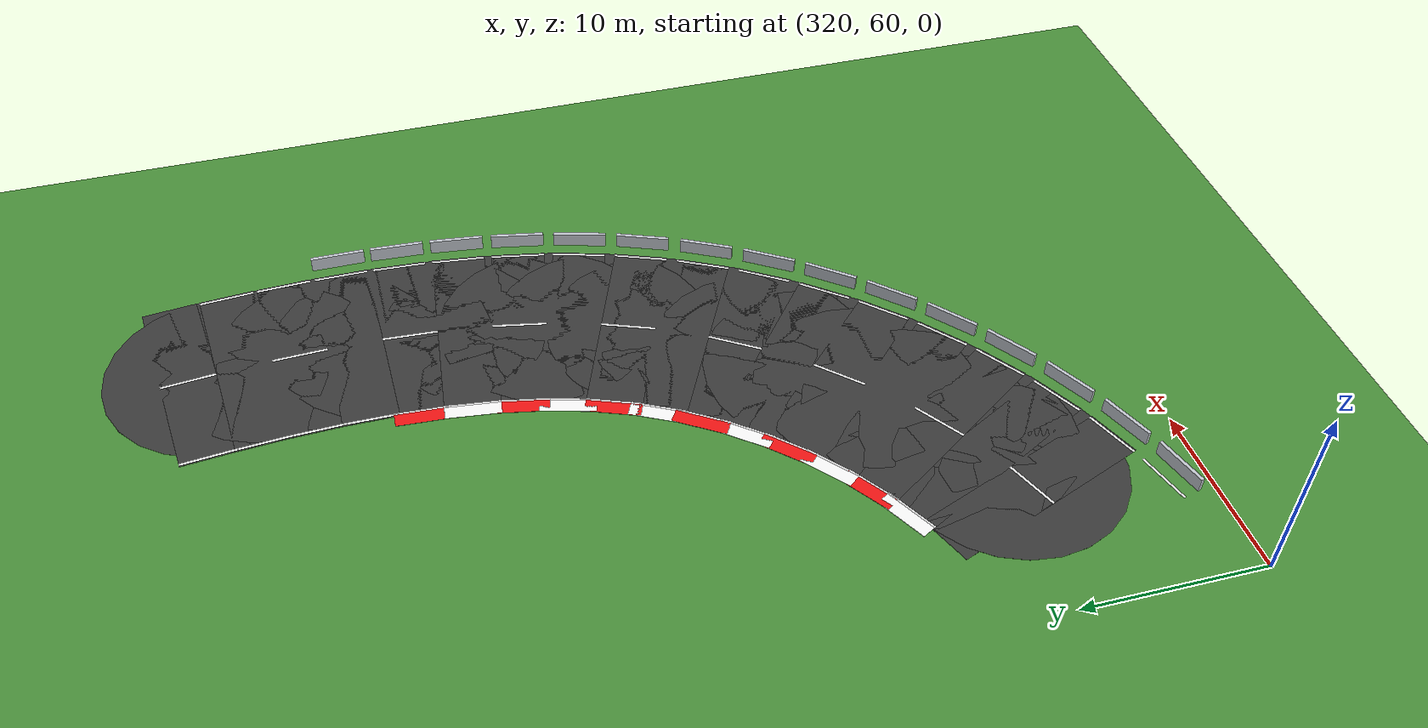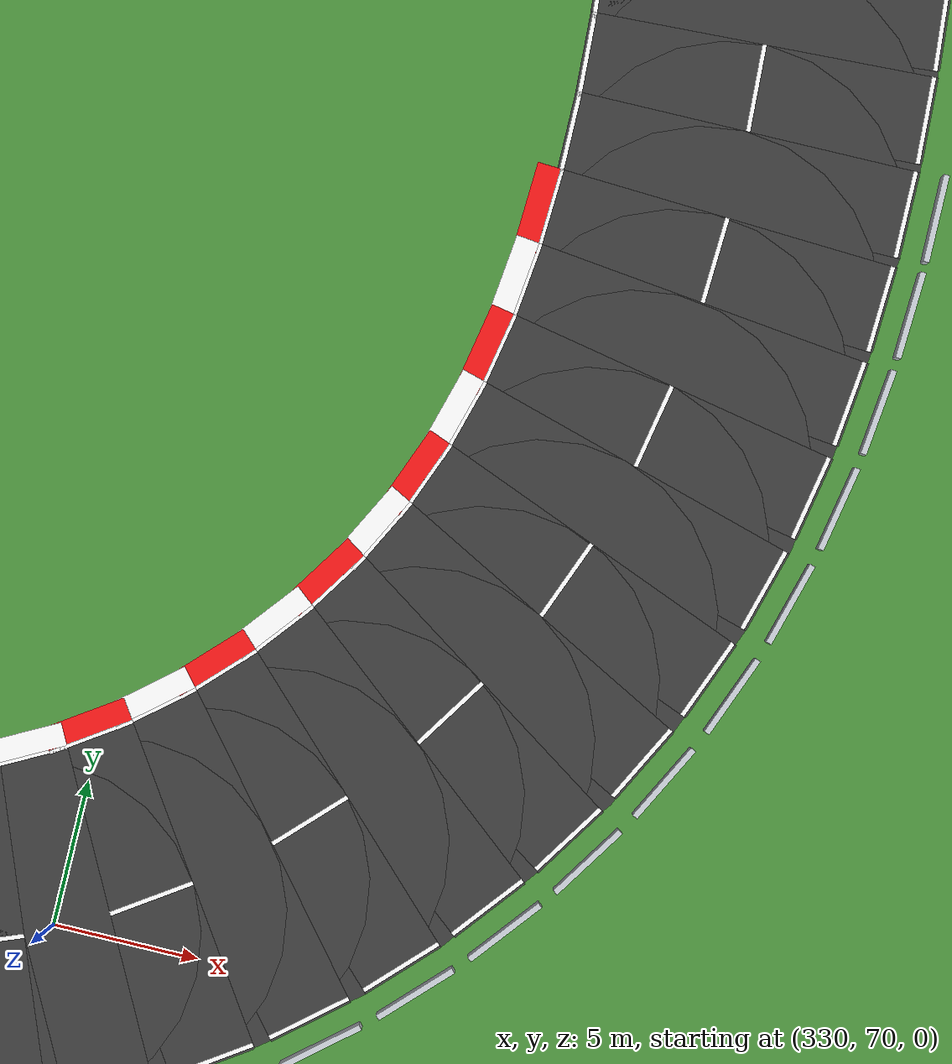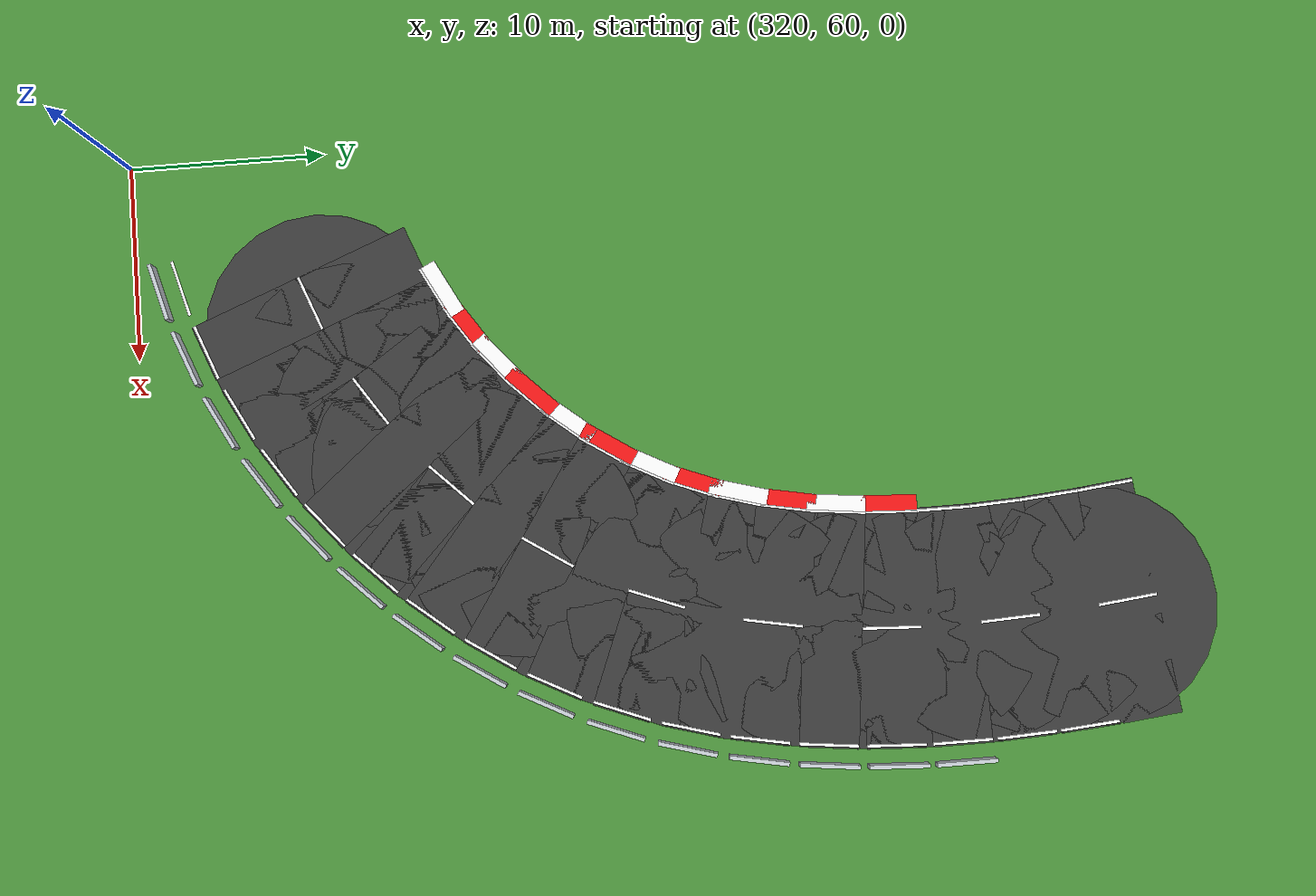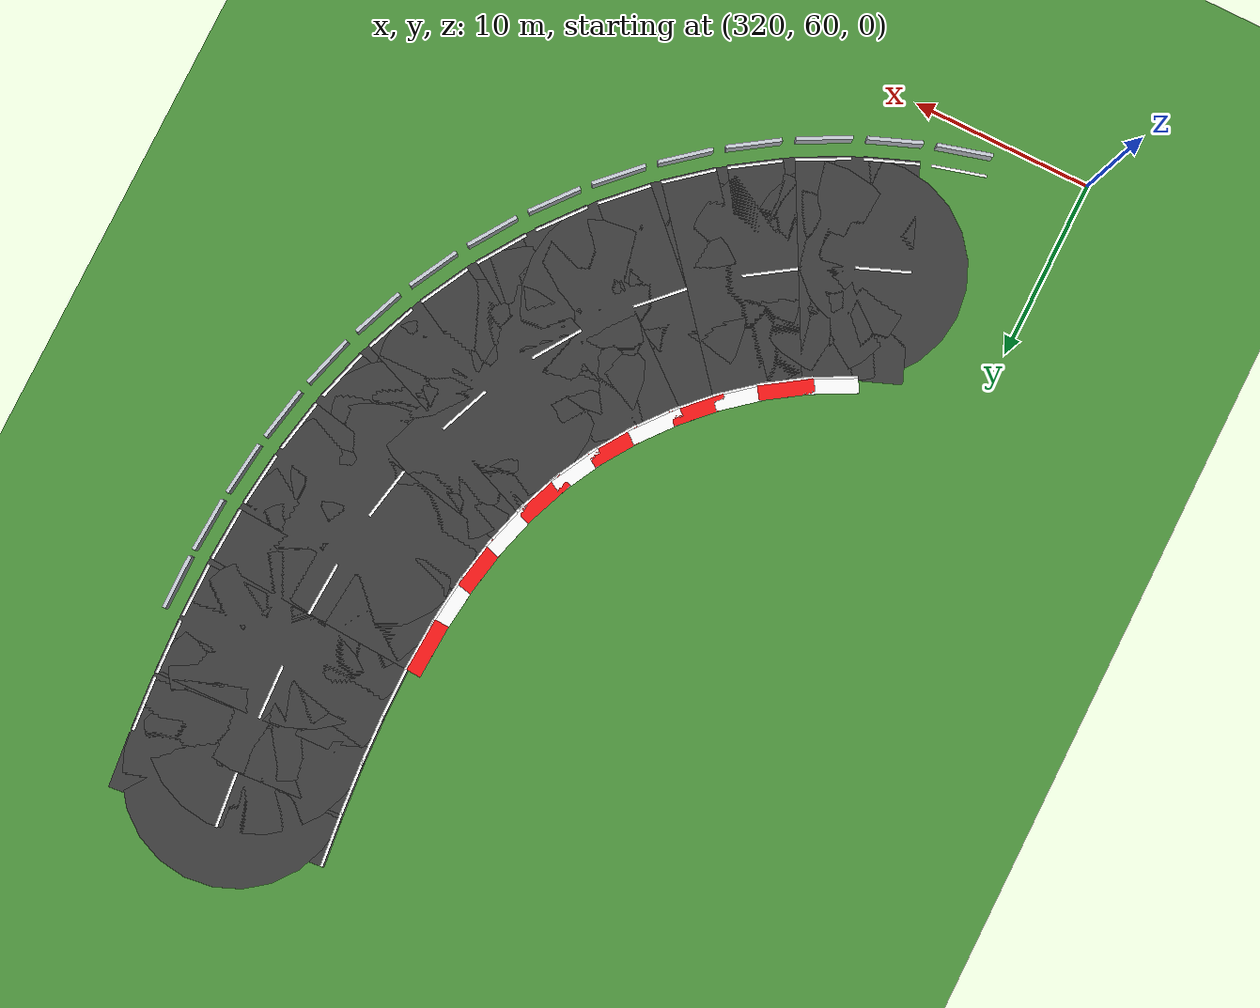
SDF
<sdf version="1.6">
 <world name="sem_silesia_ring_2026">
  <model name="ground_plane">
   <static>true</static>
   <link name="link">
    <collision name="collision">
     <geometry><plane><normal>0 0 1</normal><size>1200 1200</size></plane></geometry>
     <surface><friction><ode><mu>0.6</mu><mu2>0.6</mu2></ode></friction></surface>
    </collision>
    <visual name="visual">
     <geometry><plane><normal>0 0 1</normal><size>1200 1200</size></plane></geometry>
     <material><ambient>0.28 0.55 0.22 1</ambient><diffuse>0.28 0.55 0.22 1</diffuse></material>
    </visual>
   </link>
  </model>
  <model name="wl_R_s137">
   <static>true</static>
   <pose>326.4154 62.2663 0.0070 0 0 0.2693</pose>
   <link name="link">
    <visual name="v">
     <geometry><box><size>3.0013 0.1500 0.0080</size></box></geometry>
     <material><ambient>0.95 0.95 0.95 1</ambient><diffuse>0.95 0.95 0.95 1</diffuse></material>
    </visual>
   </link>
  </model>
  <model name="arm_outR_137">
   <static>true</static>
   <pose>326.6681 61.3506 0.4000 0 0 0.2693</pose>
   <link name="link">
    <visual name="v">
     <geometry><box><size>3.0013 0.2000 0.8000</size></box></geometry>
     <material><ambient>0.75 0.77 0.80 1</ambient><diffuse>0.75 0.77 0.80 1</diffuse></material>
    </visual>
    <collision name="c">
     <geometry><box><size>3.0013 0.2000 0.8000</size></box></geometry>
     <surface><friction><ode><mu>0.8</mu><mu2>0.8</mu2></ode></friction></surface>
    </collision>
   </link>
  </model>
  <model name="road_s138">
   <static>true</static>
   <pose>327.7028 68.8521 0.0030 0 0 0.3734</pose>
   <link name="link">
    <visual name="v">
     <geometry><box><size>3.0010 12.0000 0.0060</size></box></geometry>
     <material><ambient>0.22 0.22 0.22 1</ambient><diffuse>0.22 0.22 0.22 1</diffuse></material>
    </visual>
    <collision name="c">
     <geometry><box><size>3.0010 12.0000 0.0060</size></box></geometry>
     <surface><friction><ode><mu>0.9</mu><mu2>0.9</mu2></ode></friction></surface>
    </collision>
   </link>
  </model>
  <model name="wl_R_s138">
   <static>true</static>
   <pose>329.8367 63.4052 0.0070 0 0 0.3734</pose>
   <link name="link">
    <visual name="v">
     <geometry><box><size>3.0010 0.1500 0.0080</size></box></geometry>
     <material><ambient>0.95 0.95 0.95 1</ambient><diffuse>0.95 0.95 0.95 1</diffuse></material>
    </visual>
   </link>
  </model>
  <model name="cd_s138">
   <static>true</static>
   <pose>327.7028 68.8521 0.0070 0 0 0.3734</pose>
   <link name="link">
    <visual name="v">
     <geometry><box><size>3.0010 0.1500 0.0080</size></box></geometry>
     <material><ambient>0.95 0.95 0.95 1</ambient><diffuse>0.95 0.95 0.95 1</diffuse></material>
    </visual>
   </link>
  </model>
  <model name="arm_outR_138">
   <static>true</static>
   <pose>330.1833 62.5206 0.4000 0 0 0.3734</pose>
   <link name="link">
    <visual name="v">
     <geometry><box><size>3.0010 0.2000 0.8000</size></box></geometry>
     <material><ambient>0.75 0.77 0.80 1</ambient><diffuse>0.75 0.77 0.80 1</diffuse></material>
    </visual>
    <collision name="c">
     <geometry><box><size>3.0010 0.2000 0.8000</size></box></geometry>
     <surface><friction><ode><mu>0.8</mu><mu2>0.8</mu2></ode></friction></surface>
    </collision>
   </link>
  </model>
  <model name="road_s139">
   <static>true</static>
   <pose>330.4275 70.0987 0.0030 0 0 0.4848</pose>
   <link name="link">
    <visual name="v">
     <geometry><box><size>3.0010 12.0000 0.0060</size></box></geometry>
     <material><ambient>0.22 0.22 0.22 1</ambient><diffuse>0.22 0.22 0.22 1</diffuse></material>
    </visual>
    <collision name="c">
     <geometry><box><size>3.0010 12.0000 0.0060</size></box></geometry>
     <surface><friction><ode><mu>0.9</mu><mu2>0.9</mu2></ode></friction></surface>
    </collision>
   </link>
  </model>
  <model name="road_jnt139">
   <static>true</static>
   <pose>329.1000 69.3995 0.0030 0 0 0</pose>
   <link name="link">
    <visual name="v">
     <geometry><cylinder><radius>6.0000</radius><length>0.0060</length></cylinder></geometry>
     <material><ambient>0.22 0.22 0.22 1</ambient><diffuse>0.22 0.22 0.22 1</diffuse></material>
    </visual>
    <collision name="c">
     <geometry><cylinder><radius>6.0000</radius><length>0.0060</length></cylinder></geometry>
     <surface><friction><ode><mu>0.9</mu><mu2>0.9</mu2></ode></friction></surface>
    </collision>
   </link>
  </model>
  <model name="wl_L_s139">
   <static>true</static>
   <pose>327.7013 75.2746 0.0070 0 0 0.4848</pose>
   <link name="link">
    <visual name="v">
     <geometry><box><size>3.0010 0.1500 0.0080</size></box></geometry>
     <material><ambient>0.95 0.95 0.95 1</ambient><diffuse>0.95 0.95 0.95 1</diffuse></material>
    </visual>
   </link>
  </model>
  <model name="wl_R_s139">
   <static>true</static>
   <pose>333.1538 64.9228 0.0070 0 0 0.4848</pose>
   <link name="link">
    <visual name="v">
     <geometry><box><size>3.0010 0.1500 0.0080</size></box></geometry>
     <material><ambient>0.95 0.95 0.95 1</ambient><diffuse>0.95 0.95 0.95 1</diffuse></material>
    </visual>
   </link>
  </model>
  <model name="kerb_L_139">
   <static>true</static>
   <pose>327.4916 75.6728 0.0120 0 0 0.4848</pose>
   <link name="link">
    <visual name="v">
     <geometry><box><size>3.0010 0.8000 0.0160</size></box></geometry>
     <material><ambient>0.95 0.95 0.95 1</ambient><diffuse>0.95 0.95 0.95 1</diffuse></material>
    </visual>
   </link>
  </model>
  <model name="arm_outR_139">
   <static>true</static>
   <pose>333.5965 64.0823 0.4000 0 0 0.4848</pose>
   <link name="link">
    <visual name="v">
     <geometry><box><size>3.0010 0.2000 0.8000</size></box></geometry>
     <material><ambient>0.75 0.77 0.80 1</ambient><diffuse>0.75 0.77 0.80 1</diffuse></material>
    </visual>
    <collision name="c">
     <geometry><box><size>3.0010 0.2000 0.8000</size></box></geometry>
     <surface><friction><ode><mu>0.8</mu><mu2>0.8</mu2></ode></friction></surface>
    </collision>
   </link>
  </model>
  <model name="road_s140">
   <static>true</static>
   <pose>333.0004 71.6353 0.0030 0 0 0.5920</pose>
   <link name="link">
    <visual name="v">
     <geometry><box><size>3.0012 12.0000 0.0060</size></box></geometry>
     <material><ambient>0.22 0.22 0.22 1</ambient><diffuse>0.22 0.22 0.22 1</diffuse></material>
    </visual>
    <collision name="c">
     <geometry><box><size>3.0012 12.0000 0.0060</size></box></geometry>
     <surface><friction><ode><mu>0.9</mu><mu2>0.9</mu2></ode></friction></surface>
    </collision>
   </link>
  </model>
  <model name="road_jnt140">
   <static>true</static>
   <pose>331.7551 70.7980 0.0030 0 0 0</pose>
   <link name="link">
    <visual name="v">
     <geometry><cylinder><radius>6.0000</radius><length>0.0060</length></cylinder></geometry>
     <material><ambient>0.22 0.22 0.22 1</ambient><diffuse>0.22 0.22 0.22 1</diffuse></material>
    </visual>
    <collision name="c">
     <geometry><cylinder><radius>6.0000</radius><length>0.0060</length></cylinder></geometry>
     <surface><friction><ode><mu>0.9</mu><mu2>0.9</mu2></ode></friction></surface>
    </collision>
   </link>
  </model>
  <model name="wl_L_s140">
   <static>true</static>
   <pose>329.7361 76.4899 0.0070 0 0 0.5920</pose>
   <link name="link">
    <visual name="v">
     <geometry><box><size>3.0012 0.1500 0.0080</size></box></geometry>
     <material><ambient>0.95 0.95 0.95 1</ambient><diffuse>0.95 0.95 0.95 1</diffuse></material>
    </visual>
   </link>
  </model>
  <model name="wl_R_s140">
   <static>true</static>
   <pose>336.2647 66.7808 0.0070 0 0 0.5920</pose>
   <link name="link">
    <visual name="v">
     <geometry><box><size>3.0012 0.1500 0.0080</size></box></geometry>
     <material><ambient>0.95 0.95 0.95 1</ambient><diffuse>0.95 0.95 0.95 1</diffuse></material>
    </visual>
   </link>
  </model>
  <model name="cd_s140">
   <static>true</static>
   <pose>333.0004 71.6353 0.0070 0 0 0.5920</pose>
   <link name="link">
    <visual name="v">
     <geometry><box><size>3.0012 0.1500 0.0080</size></box></geometry>
     <material><ambient>0.95 0.95 0.95 1</ambient><diffuse>0.95 0.95 0.95 1</diffuse></material>
    </visual>
   </link>
  </model>
  <model name="kerb_L_140">
   <static>true</static>
   <pose>329.4849 76.8633 0.0120 0 0 0.5920</pose>
   <link name="link">
    <visual name="v">
     <geometry><box><size>3.0012 0.8000 0.0160</size></box></geometry>
     <material><ambient>0.92 0.08 0.08 1</ambient><diffuse>0.92 0.08 0.08 1</diffuse></material>
    </visual>
   </link>
  </model>
  <model name="arm_outR_140">
   <static>true</static>
   <pose>336.7948 65.9925 0.4000 0 0 0.5920</pose>
   <link name="link">
    <visual name="v">
     <geometry><box><size>3.0012 0.2000 0.8000</size></box></geometry>
     <material><ambient>0.75 0.77 0.80 1</ambient><diffuse>0.75 0.77 0.80 1</diffuse></material>
    </visual>
    <collision name="c">
     <geometry><box><size>3.0012 0.2000 0.8000</size></box></geometry>
     <surface><friction><ode><mu>0.8</mu><mu2>0.8</mu2></ode></friction></surface>
    </collision>
   </link>
  </model>
  <model name="road_s141">
   <static>true</static>
   <pose>335.4000 73.4316 0.0030 0 0 0.6932</pose>
   <link name="link">
    <visual name="v">
     <geometry><box><size>3.0013 12.0000 0.0060</size></box></geometry>
     <material><ambient>0.22 0.22 0.22 1</ambient><diffuse>0.22 0.22 0.22 1</diffuse></material>
    </visual>
    <collision name="c">
     <geometry><box><size>3.0013 12.0000 0.0060</size></box></geometry>
     <surface><friction><ode><mu>0.9</mu><mu2>0.9</mu2></ode></friction></surface>
    </collision>
   </link>
  </model>
  <model name="road_jnt141">
   <static>true</static>
   <pose>334.2456 72.4727 0.0030 0 0 0</pose>
   <link name="link">
    <visual name="v">
     <geometry><cylinder><radius>6.0000</radius><length>0.0060</length></cylinder></geometry>
     <material><ambient>0.22 0.22 0.22 1</ambient><diffuse>0.22 0.22 0.22 1</diffuse></material>
    </visual>
    <collision name="c">
     <geometry><cylinder><radius>6.0000</radius><length>0.0060</length></cylinder></geometry>
     <surface><friction><ode><mu>0.9</mu><mu2>0.9</mu2></ode></friction></surface>
    </collision>
   </link>
  </model>
  <model name="wl_L_s141">
   <static>true</static>
   <pose>331.6619 77.9315 0.0070 0 0 0.6932</pose>
   <link name="link">
    <visual name="v">
     <geometry><box><size>3.0013 0.1500 0.0080</size></box></geometry>
     <material><ambient>0.95 0.95 0.95 1</ambient><diffuse>0.95 0.95 0.95 1</diffuse></material>
    </visual>
   </link>
  </model>
  <model name="wl_R_s141">
   <static>true</static>
   <pose>339.1381 68.9317 0.0070 0 0 0.6932</pose>
   <link name="link">
    <visual name="v">
     <geometry><box><size>3.0013 0.1500 0.0080</size></box></geometry>
     <material><ambient>0.95 0.95 0.95 1</ambient><diffuse>0.95 0.95 0.95 1</diffuse></material>
    </visual>
   </link>
  </model>
  <model name="kerb_L_141">
   <static>true</static>
   <pose>331.3743 78.2776 0.0120 0 0 0.6932</pose>
   <link name="link">
    <visual name="v">
     <geometry><box><size>3.0013 0.8000 0.0160</size></box></geometry>
     <material><ambient>0.95 0.95 0.95 1</ambient><diffuse>0.95 0.95 0.95 1</diffuse></material>
    </visual>
   </link>
  </model>
  <model name="arm_outR_141">
   <static>true</static>
   <pose>339.7451 68.2010 0.4000 0 0 0.6932</pose>
   <link name="link">
    <visual name="v">
     <geometry><box><size>3.0013 0.2000 0.8000</size></box></geometry>
     <material><ambient>0.75 0.77 0.80 1</ambient><diffuse>0.75 0.77 0.80 1</diffuse></material>
    </visual>
    <collision name="c">
     <geometry><box><size>3.0013 0.2000 0.8000</size></box></geometry>
     <surface><friction><ode><mu>0.8</mu><mu2>0.8</mu2></ode></friction></surface>
    </collision>
   </link>
  </model>
  <model name="road_s142">
   <static>true</static>
   <pose>337.6096 75.4574 0.0030 0 0 0.7908</pose>
   <link name="link">
    <visual name="v">
     <geometry><box><size>3.0014 12.0000 0.0060</size></box></geometry>
     <material><ambient>0.22 0.22 0.22 1</ambient><diffuse>0.22 0.22 0.22 1</diffuse></material>
    </visual>
    <collision name="c">
     <geometry><box><size>3.0014 12.0000 0.0060</size></box></geometry>
     <surface><friction><ode><mu>0.9</mu><mu2>0.9</mu2></ode></friction></surface>
    </collision>
   </link>
  </model>
  <model name="road_jnt142">
   <static>true</static>
   <pose>336.5543 74.3905 0.0030 0 0 0</pose>
   <link name="link">
    <visual name="v">
     <geometry><cylinder><radius>6.0000</radius><length>0.0060</length></cylinder></geometry>
     <material><ambient>0.22 0.22 0.22 1</ambient><diffuse>0.22 0.22 0.22 1</diffuse></material>
    </visual>
    <collision name="c">
     <geometry><cylinder><radius>6.0000</radius><length>0.0060</length></cylinder></geometry>
     <surface><friction><ode><mu>0.9</mu><mu2>0.9</mu2></ode></friction></surface>
    </collision>
   </link>
  </model>
  <model name="wl_L_s142">
   <static>true</static>
   <pose>333.4506 79.5714 0.0070 0 0 0.7908</pose>
   <link name="link">
    <visual name="v">
     <geometry><box><size>3.0014 0.1500 0.0080</size></box></geometry>
     <material><ambient>0.95 0.95 0.95 1</ambient><diffuse>0.95 0.95 0.95 1</diffuse></material>
    </visual>
   </link>
  </model>
  <model name="wl_R_s142">
   <static>true</static>
   <pose>341.7687 71.3434 0.0070 0 0 0.7908</pose>
   <link name="link">
    <visual name="v">
     <geometry><box><size>3.0014 0.1500 0.0080</size></box></geometry>
     <material><ambient>0.95 0.95 0.95 1</ambient><diffuse>0.95 0.95 0.95 1</diffuse></material>
    </visual>
   </link>
  </model>
  <model name="cd_s142">
   <static>true</static>
   <pose>337.6096 75.4574 0.0070 0 0 0.7908</pose>
   <link name="link">
    <visual name="v">
     <geometry><box><size>3.0014 0.1500 0.0080</size></box></geometry>
     <material><ambient>0.95 0.95 0.95 1</ambient><diffuse>0.95 0.95 0.95 1</diffuse></material>
    </visual>
   </link>
  </model>
  <model name="kerb_L_142">
   <static>true</static>
   <pose>333.1307 79.8879 0.0120 0 0 0.7908</pose>
   <link name="link">
    <visual name="v">
     <geometry><box><size>3.0014 0.8000 0.0160</size></box></geometry>
     <material><ambient>0.92 0.08 0.08 1</ambient><diffuse>0.92 0.08 0.08 1</diffuse></material>
    </visual>
   </link>
  </model>
  <model name="arm_outR_142">
   <static>true</static>
   <pose>342.4441 70.6753 0.4000 0 0 0.7908</pose>
   <link name="link">
    <visual name="v">
     <geometry><box><size>3.0014 0.2000 0.8000</size></box></geometry>
     <material><ambient>0.75 0.77 0.80 1</ambient><diffuse>0.75 0.77 0.80 1</diffuse></material>
    </visual>
    <collision name="c">
     <geometry><box><size>3.0014 0.2000 0.8000</size></box></geometry>
     <surface><friction><ode><mu>0.8</mu><mu2>0.8</mu2></ode></friction></surface>
    </collision>
   </link>
  </model>
  <model name="road_s143">
   <static>true</static>
   <pose>339.6126 77.6880 0.0030 0 0 0.8874</pose>
   <link name="link">
    <visual name="v">
     <geometry><box><size>3.0014 12.0000 0.0060</size></box></geometry>
     <material><ambient>0.22 0.22 0.22 1</ambient><diffuse>0.22 0.22 0.22 1</diffuse></material>
    </visual>
    <collision name="c">
     <geometry><box><size>3.0014 12.0000 0.0060</size></box></geometry>
     <surface><friction><ode><mu>0.9</mu><mu2>0.9</mu2></ode></friction></surface>
    </collision>
   </link>
  </model>
  <model name="road_jnt143">
   <static>true</static>
   <pose>338.6650 76.5243 0.0030 0 0 0</pose>
   <link name="link">
    <visual name="v">
     <geometry><cylinder><radius>6.0000</radius><length>0.0060</length></cylinder></geometry>
     <material><ambient>0.22 0.22 0.22 1</ambient><diffuse>0.22 0.22 0.22 1</diffuse></material>
    </visual>
    <collision name="c">
     <geometry><cylinder><radius>6.0000</radius><length>0.0060</length></cylinder></geometry>
     <surface><friction><ode><mu>0.9</mu><mu2>0.9</mu2></ode></friction></surface>
    </collision>
   </link>
  </model>
  <model name="wl_L_s143">
   <static>true</static>
   <pose>335.0763 81.3819 0.0070 0 0 0.8874</pose>
   <link name="link">
    <visual name="v">
     <geometry><box><size>3.0014 0.1500 0.0080</size></box></geometry>
     <material><ambient>0.95 0.95 0.95 1</ambient><diffuse>0.95 0.95 0.95 1</diffuse></material>
    </visual>
   </link>
  </model>
  <model name="wl_R_s143">
   <static>true</static>
   <pose>344.1489 73.9941 0.0070 0 0 0.8874</pose>
   <link name="link">
    <visual name="v">
     <geometry><box><size>3.0014 0.1500 0.0080</size></box></geometry>
     <material><ambient>0.95 0.95 0.95 1</ambient><diffuse>0.95 0.95 0.95 1</diffuse></material>
    </visual>
   </link>
  </model>
  <model name="kerb_L_143">
   <static>true</static>
   <pose>334.7273 81.6660 0.0120 0 0 0.8874</pose>
   <link name="link">
    <visual name="v">
     <geometry><box><size>3.0014 0.8000 0.0160</size></box></geometry>
     <material><ambient>0.95 0.95 0.95 1</ambient><diffuse>0.95 0.95 0.95 1</diffuse></material>
    </visual>
   </link>
  </model>
  <model name="arm_outR_143">
   <static>true</static>
   <pose>344.8855 73.3943 0.4000 0 0 0.8874</pose>
   <link name="link">
    <visual name="v">
     <geometry><box><size>3.0014 0.2000 0.8000</size></box></geometry>
     <material><ambient>0.75 0.77 0.80 1</ambient><diffuse>0.75 0.77 0.80 1</diffuse></material>
    </visual>
    <collision name="c">
     <geometry><box><size>3.0014 0.2000 0.8000</size></box></geometry>
     <surface><friction><ode><mu>0.8</mu><mu2>0.8</mu2></ode></friction></surface>
    </collision>
   </link>
  </model>
  <model name="road_s144">
   <static>true</static>
   <pose>341.3894 80.1024 0.0030 0 0 0.9853</pose>
   <link name="link">
    <visual name="v">
     <geometry><box><size>3.0013 12.0000 0.0060</size></box></geometry>
     <material><ambient>0.22 0.22 0.22 1</ambient><diffuse>0.22 0.22 0.22 1</diffuse></material>
    </visual>
    <collision name="c">
     <geometry><box><size>3.0013 12.0000 0.0060</size></box></geometry>
     <surface><friction><ode><mu>0.9</mu><mu2>0.9</mu2></ode></friction></surface>
    </collision>
   </link>
  </model>
  <model name="road_jnt144">
   <static>true</static>
   <pose>340.5602 78.8517 0.0030 0 0 0</pose>
   <link name="link">
    <visual name="v">
     <geometry><cylinder><radius>6.0000</radius><length>0.0060</length></cylinder></geometry>
     <material><ambient>0.22 0.22 0.22 1</ambient><diffuse>0.22 0.22 0.22 1</diffuse></material>
    </visual>
    <collision name="c">
     <geometry><cylinder><radius>6.0000</radius><length>0.0060</length></cylinder></geometry>
     <surface><friction><ode><mu>0.9</mu><mu2>0.9</mu2></ode></friction></surface>
    </collision>
   </link>
  </model>
  <model name="wl_L_s144">
   <static>true</static>
   <pose>336.5136 83.3350 0.0070 0 0 0.9853</pose>
   <link name="link">
    <visual name="v">
     <geometry><box><size>3.0013 0.1500 0.0080</size></box></geometry>
     <material><ambient>0.95 0.95 0.95 1</ambient><diffuse>0.95 0.95 0.95 1</diffuse></material>
    </visual>
   </link>
  </model>
  <model name="wl_R_s144">
   <static>true</static>
   <pose>346.2651 76.8698 0.0070 0 0 0.9853</pose>
   <link name="link">
    <visual name="v">
     <geometry><box><size>3.0013 0.1500 0.0080</size></box></geometry>
     <material><ambient>0.95 0.95 0.95 1</ambient><diffuse>0.95 0.95 0.95 1</diffuse></material>
    </visual>
   </link>
  </model>
  <model name="cd_s144">
   <static>true</static>
   <pose>341.3894 80.1024 0.0070 0 0 0.9853</pose>
   <link name="link">
    <visual name="v">
     <geometry><box><size>3.0013 0.1500 0.0080</size></box></geometry>
     <material><ambient>0.95 0.95 0.95 1</ambient><diffuse>0.95 0.95 0.95 1</diffuse></material>
    </visual>
   </link>
  </model>
  <model name="kerb_L_144">
   <static>true</static>
   <pose>336.1386 83.5837 0.0120 0 0 0.9853</pose>
   <link name="link">
    <visual name="v">
     <geometry><box><size>3.0013 0.8000 0.0160</size></box></geometry>
     <material><ambient>0.92 0.08 0.08 1</ambient><diffuse>0.92 0.08 0.08 1</diffuse></material>
    </visual>
   </link>
  </model>
  <model name="arm_outR_144">
   <static>true</static>
   <pose>347.0569 76.3449 0.4000 0 0 0.9853</pose>
   <link name="link">
    <visual name="v">
     <geometry><box><size>3.0013 0.2000 0.8000</size></box></geometry>
     <material><ambient>0.75 0.77 0.80 1</ambient><diffuse>0.75 0.77 0.80 1</diffuse></material>
    </visual>
    <collision name="c">
     <geometry><box><size>3.0013 0.2000 0.8000</size></box></geometry>
     <surface><friction><ode><mu>0.8</mu><mu2>0.8</mu2></ode></friction></surface>
    </collision>
   </link>
  </model>
  <model name="road_s145">
   <static>true</static>
   <pose>342.9163 82.6817 0.0030 0 0 1.0872</pose>
   <link name="link">
    <visual name="v">
     <geometry><box><size>3.0012 12.0000 0.0060</size></box></geometry>
     <material><ambient>0.22 0.22 0.22 1</ambient><diffuse>0.22 0.22 0.22 1</diffuse></material>
    </visual>
    <collision name="c">
     <geometry><box><size>3.0012 12.0000 0.0060</size></box></geometry>
     <surface><friction><ode><mu>0.9</mu><mu2>0.9</mu2></ode></friction></surface>
    </collision>
   </link>
  </model>
  <model name="road_jnt145">
   <static>true</static>
   <pose>342.2186 81.3532 0.0030 0 0 0</pose>
   <link name="link">
    <visual name="v">
     <geometry><cylinder><radius>6.0000</radius><length>0.0060</length></cylinder></geometry>
     <material><ambient>0.22 0.22 0.22 1</ambient><diffuse>0.22 0.22 0.22 1</diffuse></material>
    </visual>
    <collision name="c">
     <geometry><cylinder><radius>6.0000</radius><length>0.0060</length></cylinder></geometry>
     <surface><friction><ode><mu>0.9</mu><mu2>0.9</mu2></ode></friction></surface>
    </collision>
   </link>
  </model>
  <model name="wl_L_s145">
   <static>true</static>
   <pose>337.7371 85.4016 0.0070 0 0 1.0872</pose>
   <link name="link">
    <visual name="v">
     <geometry><box><size>3.0012 0.1500 0.0080</size></box></geometry>
     <material><ambient>0.95 0.95 0.95 1</ambient><diffuse>0.95 0.95 0.95 1</diffuse></material>
    </visual>
   </link>
  </model>
  <model name="wl_R_s145">
   <static>true</static>
   <pose>348.0955 79.9617 0.0070 0 0 1.0872</pose>
   <link name="link">
    <visual name="v">
     <geometry><box><size>3.0012 0.1500 0.0080</size></box></geometry>
     <material><ambient>0.95 0.95 0.95 1</ambient><diffuse>0.95 0.95 0.95 1</diffuse></material>
    </visual>
   </link>
  </model>
  <model name="kerb_L_145">
   <static>true</static>
   <pose>337.3387 85.6109 0.0120 0 0 1.0872</pose>
   <link name="link">
    <visual name="v">
     <geometry><box><size>3.0012 0.8000 0.0160</size></box></geometry>
     <material><ambient>0.95 0.95 0.95 1</ambient><diffuse>0.95 0.95 0.95 1</diffuse></material>
    </visual>
   </link>
  </model>
  <model name="arm_outR_145">
   <static>true</static>
   <pose>348.9366 79.5200 0.4000 0 0 1.0872</pose>
   <link name="link">
    <visual name="v">
     <geometry><box><size>3.0012 0.2000 0.8000</size></box></geometry>
     <material><ambient>0.75 0.77 0.80 1</ambient><diffuse>0.75 0.77 0.80 1</diffuse></material>
    </visual>
    <collision name="c">
     <geometry><box><size>3.0012 0.2000 0.8000</size></box></geometry>
     <surface><friction><ode><mu>0.8</mu><mu2>0.8</mu2></ode></friction></surface>
    </collision>
   </link>
  </model>
  <model name="road_s146">
   <static>true</static>
   <pose>344.1680 85.4048 0.0030 0 0 1.1927</pose>
   <link name="link">
    <visual name="v">
     <geometry><box><size>3.0012 12.0000 0.0060</size></box></geometry>
     <material><ambient>0.22 0.22 0.22 1</ambient><diffuse>0.22 0.22 0.22 1</diffuse></material>
    </visual>
    <collision name="c">
     <geometry><box><size>3.0012 12.0000 0.0060</size></box></geometry>
     <surface><friction><ode><mu>0.9</mu><mu2>0.9</mu2></ode></friction></surface>
    </collision>
   </link>
  </model>
  <model name="road_jnt146">
   <static>true</static>
   <pose>343.6140 84.0102 0.0030 0 0 0</pose>
   <link name="link">
    <visual name="v">
     <geometry><cylinder><radius>6.0000</radius><length>0.0060</length></cylinder></geometry>
     <material><ambient>0.22 0.22 0.22 1</ambient><diffuse>0.22 0.22 0.22 1</diffuse></material>
    </visual>
    <collision name="c">
     <geometry><cylinder><radius>6.0000</radius><length>0.0060</length></cylinder></geometry>
     <surface><friction><ode><mu>0.9</mu><mu2>0.9</mu2></ode></friction></surface>
    </collision>
   </link>
  </model>
  <model name="wl_L_s146">
   <static>true</static>
   <pose>338.7313 87.5646 0.0070 0 0 1.1927</pose>
   <link name="link">
    <visual name="v">
     <geometry><box><size>3.0012 0.1500 0.0080</size></box></geometry>
     <material><ambient>0.95 0.95 0.95 1</ambient><diffuse>0.95 0.95 0.95 1</diffuse></material>
    </visual>
   </link>
  </model>
  <model name="wl_R_s146">
   <static>true</static>
   <pose>349.6047 83.2450 0.0070 0 0 1.1927</pose>
   <link name="link">
    <visual name="v">
     <geometry><box><size>3.0012 0.1500 0.0080</size></box></geometry>
     <material><ambient>0.95 0.95 0.95 1</ambient><diffuse>0.95 0.95 0.95 1</diffuse></material>
    </visual>
   </link>
  </model>
  <model name="cd_s146">
   <static>true</static>
   <pose>344.1680 85.4048 0.0070 0 0 1.1927</pose>
   <link name="link">
    <visual name="v">
     <geometry><box><size>3.0012 0.1500 0.0080</size></box></geometry>
     <material><ambient>0.95 0.95 0.95 1</ambient><diffuse>0.95 0.95 0.95 1</diffuse></material>
    </visual>
   </link>
  </model>
  <model name="kerb_L_146">
   <static>true</static>
   <pose>338.3131 87.7307 0.0120 0 0 1.1927</pose>
   <link name="link">
    <visual name="v">
     <geometry><box><size>3.0012 0.8000 0.0160</size></box></geometry>
     <material><ambient>0.92 0.08 0.08 1</ambient><diffuse>0.92 0.08 0.08 1</diffuse></material>
    </visual>
   </link>
  </model>
  <model name="arm_outR_146">
   <static>true</static>
   <pose>350.4876 82.8942 0.4000 0 0 1.1927</pose>
   <link name="link">
    <visual name="v">
     <geometry><box><size>3.0012 0.2000 0.8000</size></box></geometry>
     <material><ambient>0.75 0.77 0.80 1</ambient><diffuse>0.75 0.77 0.80 1</diffuse></material>
    </visual>
    <collision name="c">
     <geometry><box><size>3.0012 0.2000 0.8000</size></box></geometry>
     <surface><friction><ode><mu>0.8</mu><mu2>0.8</mu2></ode></friction></surface>
    </collision>
   </link>
  </model>
  <model name="road_s147">
   <static>true</static>
   <pose>345.1360 88.2419 0.0030 0 0 1.2913</pose>
   <link name="link">
    <visual name="v">
     <geometry><box><size>3.0014 12.0000 0.0060</size></box></geometry>
     <material><ambient>0.22 0.22 0.22 1</ambient><diffuse>0.22 0.22 0.22 1</diffuse></material>
    </visual>
    <collision name="c">
     <geometry><box><size>3.0014 12.0000 0.0060</size></box></geometry>
     <surface><friction><ode><mu>0.9</mu><mu2>0.9</mu2></ode></friction></surface>
    </collision>
   </link>
  </model>
  <model name="road_jnt147">
   <static>true</static>
   <pose>344.7220 86.7994 0.0030 0 0 0</pose>
   <link name="link">
    <visual name="v">
     <geometry><cylinder><radius>6.0000</radius><length>0.0060</length></cylinder></geometry>
     <material><ambient>0.22 0.22 0.22 1</ambient><diffuse>0.22 0.22 0.22 1</diffuse></material>
    </visual>
    <collision name="c">
     <geometry><cylinder><radius>6.0000</radius><length>0.0060</length></cylinder></geometry>
     <surface><friction><ode><mu>0.9</mu><mu2>0.9</mu2></ode></friction></surface>
    </collision>
   </link>
  </model>
  <model name="wl_L_s147">
   <static>true</static>
   <pose>339.5129 89.8555 0.0070 0 0 1.2913</pose>
   <link name="link">
    <visual name="v">
     <geometry><box><size>3.0014 0.1500 0.0080</size></box></geometry>
     <material><ambient>0.95 0.95 0.95 1</ambient><diffuse>0.95 0.95 0.95 1</diffuse></material>
    </visual>
   </link>
  </model>
  <model name="wl_R_s147">
   <static>true</static>
   <pose>350.7590 86.6283 0.0070 0 0 1.2913</pose>
   <link name="link">
    <visual name="v">
     <geometry><box><size>3.0014 0.1500 0.0080</size></box></geometry>
     <material><ambient>0.95 0.95 0.95 1</ambient><diffuse>0.95 0.95 0.95 1</diffuse></material>
    </visual>
   </link>
  </model>
  <model name="kerb_L_147">
   <static>true</static>
   <pose>339.0804 89.9796 0.0120 0 0 1.2913</pose>
   <link name="link">
    <visual name="v">
     <geometry><box><size>3.0014 0.8000 0.0160</size></box></geometry>
     <material><ambient>0.95 0.95 0.95 1</ambient><diffuse>0.95 0.95 0.95 1</diffuse></material>
    </visual>
   </link>
  </model>
  <model name="arm_outR_147">
   <static>true</static>
   <pose>351.6722 86.3662 0.4000 0 0 1.2913</pose>
   <link name="link">
    <visual name="v">
     <geometry><box><size>3.0014 0.2000 0.8000</size></box></geometry>
     <material><ambient>0.75 0.77 0.80 1</ambient><diffuse>0.75 0.77 0.80 1</diffuse></material>
    </visual>
    <collision name="c">
     <geometry><box><size>3.0014 0.2000 0.8000</size></box></geometry>
     <surface><friction><ode><mu>0.8</mu><mu2>0.8</mu2></ode></friction></surface>
    </collision>
   </link>
  </model>
  <model name="road_s148">
   <static>true</static>
   <pose>345.8360 91.1577 0.0030 0 0 1.3790</pose>
   <link name="link">
    <visual name="v">
     <geometry><box><size>3.0017 12.0000 0.0060</size></box></geometry>
     <material><ambient>0.22 0.22 0.22 1</ambient><diffuse>0.22 0.22 0.22 1</diffuse></material>
    </visual>
    <collision name="c">
     <geometry><box><size>3.0017 12.0000 0.0060</size></box></geometry>
     <surface><friction><ode><mu>0.9</mu><mu2>0.9</mu2></ode></friction></surface>
    </collision>
   </link>
  </model>
  <model name="road_jnt148">
   <static>true</static>
   <pose>345.5499 89.6844 0.0030 0 0 0</pose>
   <link name="link">
    <visual name="v">
     <geometry><cylinder><radius>6.0000</radius><length>0.0060</length></cylinder></geometry>
     <material><ambient>0.22 0.22 0.22 1</ambient><diffuse>0.22 0.22 0.22 1</diffuse></material>
    </visual>
    <collision name="c">
     <geometry><cylinder><radius>6.0000</radius><length>0.0060</length></cylinder></geometry>
     <surface><friction><ode><mu>0.9</mu><mu2>0.9</mu2></ode></friction></surface>
    </collision>
   </link>
  </model>
  <model name="wl_L_s148">
   <static>true</static>
   <pose>340.0932 92.2727 0.0070 0 0 1.3790</pose>
   <link name="link">
    <visual name="v">
     <geometry><box><size>3.0017 0.1500 0.0080</size></box></geometry>
     <material><ambient>0.95 0.95 0.95 1</ambient><diffuse>0.95 0.95 0.95 1</diffuse></material>
    </visual>
   </link>
  </model>
  <model name="wl_R_s148">
   <static>true</static>
   <pose>351.5787 90.0428 0.0070 0 0 1.3790</pose>
   <link name="link">
    <visual name="v">
     <geometry><box><size>3.0017 0.1500 0.0080</size></box></geometry>
     <material><ambient>0.95 0.95 0.95 1</ambient><diffuse>0.95 0.95 0.95 1</diffuse></material>
    </visual>
   </link>
  </model>
  <model name="cd_s148">
   <static>true</static>
   <pose>345.8360 91.1577 0.0070 0 0 1.3790</pose>
   <link name="link">
    <visual name="v">
     <geometry><box><size>3.0017 0.1500 0.0080</size></box></geometry>
     <material><ambient>0.95 0.95 0.95 1</ambient><diffuse>0.95 0.95 0.95 1</diffuse></material>
    </visual>
   </link>
  </model>
  <model name="kerb_L_148">
   <static>true</static>
   <pose>339.6514 92.3584 0.0120 0 0 1.3790</pose>
   <link name="link">
    <visual name="v">
     <geometry><box><size>3.0017 0.8000 0.0160</size></box></geometry>
     <material><ambient>0.92 0.08 0.08 1</ambient><diffuse>0.92 0.08 0.08 1</diffuse></material>
    </visual>
   </link>
  </model>
  <model name="arm_outR_148">
   <static>true</static>
   <pose>352.5113 89.8617 0.4000 0 0 1.3790</pose>
   <link name="link">
    <visual name="v">
     <geometry><box><size>3.0017 0.2000 0.8000</size></box></geometry>
     <material><ambient>0.75 0.77 0.80 1</ambient><diffuse>0.75 0.77 0.80 1</diffuse></material>
    </visual>
    <collision name="c">
     <geometry><box><size>3.0017 0.2000 0.8000</size></box></geometry>
     <surface><friction><ode><mu>0.8</mu><mu2>0.8</mu2></ode></friction></surface>
    </collision>
   </link>
  </model>
  <model name="road_s149">
   <static>true</static>
   <pose>346.2955 94.1220 0.0030 0 0 1.4549</pose>
   <link name="link">
    <visual name="v">
     <geometry><box><size>3.0019 12.0000 0.0060</size></box></geometry>
     <material><ambient>0.22 0.22 0.22 1</ambient><diffuse>0.22 0.22 0.22 1</diffuse></material>
    </visual>
    <collision name="c">
     <geometry><box><size>3.0019 12.0000 0.0060</size></box></geometry>
     <surface><friction><ode><mu>0.9</mu><mu2>0.9</mu2></ode></friction></surface>
    </collision>
   </link>
  </model>
  <model name="road_jnt149">
   <static>true</static>
   <pose>346.1220 92.6311 0.0030 0 0 0</pose>
   <link name="link">
    <visual name="v">
     <geometry><cylinder><radius>6.0000</radius><length>0.0060</length></cylinder></geometry>
     <material><ambient>0.22 0.22 0.22 1</ambient><diffuse>0.22 0.22 0.22 1</diffuse></material>
    </visual>
    <collision name="c">
     <geometry><cylinder><radius>6.0000</radius><length>0.0060</length></cylinder></geometry>
     <surface><friction><ode><mu>0.9</mu><mu2>0.9</mu2></ode></friction></surface>
    </collision>
   </link>
  </model>
  <model name="wl_L_s149">
   <static>true</static>
   <pose>340.4847 94.7981 0.0070 0 0 1.4549</pose>
   <link name="link">
    <visual name="v">
     <geometry><box><size>3.0019 0.1500 0.0080</size></box></geometry>
     <material><ambient>0.95 0.95 0.95 1</ambient><diffuse>0.95 0.95 0.95 1</diffuse></material>
    </visual>
   </link>
  </model>
  <model name="wl_R_s149">
   <static>true</static>
   <pose>352.1063 93.4458 0.0070 0 0 1.4549</pose>
   <link name="link">
    <visual name="v">
     <geometry><box><size>3.0019 0.1500 0.0080</size></box></geometry>
     <material><ambient>0.95 0.95 0.95 1</ambient><diffuse>0.95 0.95 0.95 1</diffuse></material>
    </visual>
   </link>
  </model>
  <model name="kerb_L_149">
   <static>true</static>
   <pose>340.0377 94.8502 0.0120 0 0 1.4549</pose>
   <link name="link">
    <visual name="v">
     <geometry><box><size>3.0019 0.8000 0.0160</size></box></geometry>
     <material><ambient>0.95 0.95 0.95 1</ambient><diffuse>0.95 0.95 0.95 1</diffuse></material>
    </visual>
   </link>
  </model>
  <model name="arm_outR_149">
   <static>true</static>
   <pose>353.0499 93.3359 0.4000 0 0 1.4549</pose>
   <link name="link">
    <visual name="v">
     <geometry><box><size>3.0019 0.2000 0.8000</size></box></geometry>
     <material><ambient>0.75 0.77 0.80 1</ambient><diffuse>0.75 0.77 0.80 1</diffuse></material>
    </visual>
    <collision name="c">
     <geometry><box><size>3.0019 0.2000 0.8000</size></box></geometry>
     <surface><friction><ode><mu>0.8</mu><mu2>0.8</mu2></ode></friction></surface>
    </collision>
   </link>
  </model>
  <model name="road_s150">
   <static>true</static>
   <pose>346.5462 97.1119 0.0030 0 0 1.5194</pose>
   <link name="link">
    <visual name="v">
     <geometry><box><size>3.0021 12.0000 0.0060</size></box></geometry>
     <material><ambient>0.22 0.22 0.22 1</ambient><diffuse>0.22 0.22 0.22 1</diffuse></material>
    </visual>
    <collision name="c">
     <geometry><box><size>3.0021 12.0000 0.0060</size></box></geometry>
     <surface><friction><ode><mu>0.9</mu><mu2>0.9</mu2></ode></friction></surface>
    </collision>
   </link>
  </model>
  <model name="road_jnt150">
   <static>true</static>
   <pose>346.4690 95.6129 0.0030 0 0 0</pose>
   <link name="link">
    <visual name="v">
     <geometry><cylinder><radius>6.0000</radius><length>0.0060</length></cylinder></geometry>
     <material><ambient>0.22 0.22 0.22 1</ambient><diffuse>0.22 0.22 0.22 1</diffuse></material>
    </visual>
    <collision name="c">
     <geometry><cylinder><radius>6.0000</radius><length>0.0060</length></cylinder></geometry>
     <surface><friction><ode><mu>0.9</mu><mu2>0.9</mu2></ode></friction></surface>
    </collision>
   </link>
  </model>
  <model name="wl_L_s150">
   <static>true</static>
   <pose>340.7039 97.4127 0.0070 0 0 1.5194</pose>
   <link name="link">
    <visual name="v">
     <geometry><box><size>3.0021 0.1500 0.0080</size></box></geometry>
     <material><ambient>0.95 0.95 0.95 1</ambient><diffuse>0.95 0.95 0.95 1</diffuse></material>
    </visual>
   </link>
  </model>
  <model name="wl_R_s150">
   <static>true</static>
   <pose>352.3884 96.8111 0.0070 0 0 1.5194</pose>
   <link name="link">
    <visual name="v">
     <geometry><box><size>3.0021 0.1500 0.0080</size></box></geometry>
     <material><ambient>0.95 0.95 0.95 1</ambient><diffuse>0.95 0.95 0.95 1</diffuse></material>
    </visual>
   </link>
  </model>
  <model name="cd_s150">
   <static>true</static>
   <pose>346.5462 97.1119 0.0070 0 0 1.5194</pose>
   <link name="link">
    <visual name="v">
     <geometry><box><size>3.0021 0.1500 0.0080</size></box></geometry>
     <material><ambient>0.95 0.95 0.95 1</ambient><diffuse>0.95 0.95 0.95 1</diffuse></material>
    </visual>
   </link>
  </model>
  <model name="kerb_L_150">
   <static>true</static>
   <pose>340.2545 97.4359 0.0120 0 0 1.5194</pose>
   <link name="link">
    <visual name="v">
     <geometry><box><size>3.0021 0.8000 0.0160</size></box></geometry>
     <material><ambient>0.92 0.08 0.08 1</ambient><diffuse>0.92 0.08 0.08 1</diffuse></material>
    </visual>
   </link>
  </model>
  <model name="arm_outR_150">
   <static>true</static>
   <pose>353.3372 96.7623 0.4000 0 0 1.5194</pose>
   <link name="link">
    <visual name="v">
     <geometry><box><size>3.0021 0.2000 0.8000</size></box></geometry>
     <material><ambient>0.75 0.77 0.80 1</ambient><diffuse>0.75 0.77 0.80 1</diffuse></material>
    </visual>
    <collision name="c">
     <geometry><box><size>3.0021 0.2000 0.8000</size></box></geometry>
     <surface><friction><ode><mu>0.8</mu><mu2>0.8</mu2></ode></friction></surface>
    </collision>
   </link>
  </model>
  <model name="road_s151">
   <static>true</static>
   <pose>346.6200 100.1121 0.0030 0 0 1.5730</pose>
   <link name="link">
    <visual name="v">
     <geometry><box><size>3.0022 12.0000 0.0060</size></box></geometry>
     <material><ambient>0.22 0.22 0.22 1</ambient><diffuse>0.22 0.22 0.22 1</diffuse></material>
    </visual>
    <collision name="c">
     <geometry><box><size>3.0022 12.0000 0.0060</size></box></geometry>
     <surface><friction><ode><mu>0.9</mu><mu2>0.9</mu2></ode></friction></surface>
    </collision>
   </link>
  </model>
  <model name="road_jnt151">
   <static>true</static>
   <pose>346.6234 98.6110 0.0030 0 0 0</pose>
   <link name="link">
    <visual name="v">
     <geometry><cylinder><radius>6.0000</radius><length>0.0060</length></cylinder></geometry>
     <material><ambient>0.22 0.22 0.22 1</ambient><diffuse>0.22 0.22 0.22 1</diffuse></material>
    </visual>
    <collision name="c">
     <geometry><cylinder><radius>6.0000</radius><length>0.0060</length></cylinder></geometry>
     <surface><friction><ode><mu>0.9</mu><mu2>0.9</mu2></ode></friction></surface>
    </collision>
   </link>
  </model>
  <model name="wl_L_s151">
   <static>true</static>
   <pose>340.7700 100.0990 0.0070 0 0 1.5730</pose>
   <link name="link">
    <visual name="v">
     <geometry><box><size>3.0022 0.1500 0.0080</size></box></geometry>
     <material><ambient>0.95 0.95 0.95 1</ambient><diffuse>0.95 0.95 0.95 1</diffuse></material>
    </visual>
   </link>
  </model>
  <model name="wl_R_s151">
   <static>true</static>
   <pose>352.4700 100.1252 0.0070 0 0 1.5730</pose>
   <link name="link">
    <visual name="v">
     <geometry><box><size>3.0022 0.1500 0.0080</size></box></geometry>
     <material><ambient>0.95 0.95 0.95 1</ambient><diffuse>0.95 0.95 0.95 1</diffuse></material>
    </visual>
   </link>
  </model>
  <model name="arm_outR_151">
   <static>true</static>
   <pose>353.4200 100.1273 0.4000 0 0 1.5730</pose>
   <link name="link">
    <visual name="v">
     <geometry><box><size>3.0022 0.2000 0.8000</size></box></geometry>
     <material><ambient>0.75 0.77 0.80 1</ambient><diffuse>0.75 0.77 0.80 1</diffuse></material>
    </visual>
    <collision name="c">
     <geometry><box><size>3.0022 0.2000 0.8000</size></box></geometry>
     <surface><friction><ode><mu>0.8</mu><mu2>0.8</mu2></ode></friction></surface>
    </collision>
   </link>
  </model>
  <model name="road_s152">
   <static>true</static>
   <pose>346.5475 103.1128 0.0030 0 0 1.6169</pose>
   <link name="link">
    <visual name="v">
     <geometry><box><size>3.0023 12.0000 0.0060</size></box></geometry>
     <material><ambient>0.22 0.22 0.22 1</ambient><diffuse>0.22 0.22 0.22 1</diffuse></material>
    </visual>
    <collision name="c">
     <geometry><box><size>3.0023 12.0000 0.0060</size></box></geometry>
     <surface><friction><ode><mu>0.9</mu><mu2>0.9</mu2></ode></friction></surface>
    </collision>
   </link>
  </model>
  <model name="road_jnt152">
   <static>true</static>
   <pose>346.6167 101.6132 0.0030 0 0 0</pose>
   <link name="link">
    <visual name="v">
     <geometry><cylinder><radius>6.0000</radius><length>0.0060</length></cylinder></geometry>
     <material><ambient>0.22 0.22 0.22 1</ambient><diffuse>0.22 0.22 0.22 1</diffuse></material>
    </visual>
    <collision name="c">
     <geometry><cylinder><radius>6.0000</radius><length>0.0060</length></cylinder></geometry>
     <surface><friction><ode><mu>0.9</mu><mu2>0.9</mu2></ode></friction></surface>
    </collision>
   </link>
  </model>
  <model name="wl_L_s152">
   <static>true</static>
   <pose>340.7037 102.8431 0.0070 0 0 1.6169</pose>
   <link name="link">
    <visual name="v">
     <geometry><box><size>3.0023 0.1500 0.0080</size></box></geometry>
     <material><ambient>0.95 0.95 0.95 1</ambient><diffuse>0.95 0.95 0.95 1</diffuse></material>
    </visual>
   </link>
  </model>
  <model name="wl_R_s152">
   <static>true</static>
   <pose>352.3913 103.3825 0.0070 0 0 1.6169</pose>
   <link name="link">
    <visual name="v">
     <geometry><box><size>3.0023 0.1500 0.0080</size></box></geometry>
     <material><ambient>0.95 0.95 0.95 1</ambient><diffuse>0.95 0.95 0.95 1</diffuse></material>
    </visual>
   </link>
  </model>
  <model name="cd_s152">
   <static>true</static>
   <pose>346.5475 103.1128 0.0070 0 0 1.6169</pose>
   <link name="link">
    <visual name="v">
     <geometry><box><size>3.0023 0.1500 0.0080</size></box></geometry>
     <material><ambient>0.95 0.95 0.95 1</ambient><diffuse>0.95 0.95 0.95 1</diffuse></material>
    </visual>
   </link>
  </model>
  <model name="road_s153">
   <static>true</static>
   <pose>346.3568 106.1087 0.0030 0 0 1.6518</pose>
   <link name="link">
    <visual name="v">
     <geometry><box><size>3.0024 12.0000 0.0060</size></box></geometry>
     <material><ambient>0.22 0.22 0.22 1</ambient><diffuse>0.22 0.22 0.22 1</diffuse></material>
    </visual>
    <collision name="c">
     <geometry><box><size>3.0024 12.0000 0.0060</size></box></geometry>
     <surface><friction><ode><mu>0.9</mu><mu2>0.9</mu2></ode></friction></surface>
    </collision>
   </link>
  </model>
  <model name="road_jnt153">
   <static>true</static>
   <pose>346.4783 104.6124 0.0030 0 0 0</pose>
   <link name="link">
    <visual name="v">
     <geometry><cylinder><radius>6.0000</radius><length>0.0060</length></cylinder></geometry>
     <material><ambient>0.22 0.22 0.22 1</ambient><diffuse>0.22 0.22 0.22 1</diffuse></material>
    </visual>
    <collision name="c">
     <geometry><cylinder><radius>6.0000</radius><length>0.0060</length></cylinder></geometry>
     <surface><friction><ode><mu>0.9</mu><mu2>0.9</mu2></ode></friction></surface>
    </collision>
   </link>
  </model>
  <model name="wl_L_s153">
   <static>true</static>
   <pose>340.5260 105.6352 0.0070 0 0 1.6518</pose>
   <link name="link">
    <visual name="v">
     <geometry><box><size>3.0024 0.1500 0.0080</size></box></geometry>
     <material><ambient>0.95 0.95 0.95 1</ambient><diffuse>0.95 0.95 0.95 1</diffuse></material>
    </visual>
   </link>
  </model>
  <model name="wl_R_s153">
   <static>true</static>
   <pose>352.1876 106.5822 0.0070 0 0 1.6518</pose>
   <link name="link">
    <visual name="v">
     <geometry><box><size>3.0024 0.1500 0.0080</size></box></geometry>
     <material><ambient>0.95 0.95 0.95 1</ambient><diffuse>0.95 0.95 0.95 1</diffuse></material>
    </visual>
   </link>
  </model>
  <model name="road_s154">
   <static>true</static>
   <pose>346.0733 109.0974 0.0030 0 0 1.6789</pose>
   <link name="link">
    <visual name="v">
     <geometry><box><size>3.0025 12.0000 0.0060</size></box></geometry>
     <material><ambient>0.22 0.22 0.22 1</ambient><diffuse>0.22 0.22 0.22 1</diffuse></material>
    </visual>
    <collision name="c">
     <geometry><box><size>3.0025 12.0000 0.0060</size></box></geometry>
     <surface><friction><ode><mu>0.9</mu><mu2>0.9</mu2></ode></friction></surface>
    </collision>
   </link>
  </model>
  <model name="road_jnt154">
   <static>true</static>
   <pose>346.2353 107.6049 0.0030 0 0 0</pose>
   <link name="link">
    <visual name="v">
     <geometry><cylinder><radius>6.0000</radius><length>0.0060</length></cylinder></geometry>
     <material><ambient>0.22 0.22 0.22 1</ambient><diffuse>0.22 0.22 0.22 1</diffuse></material>
    </visual>
    <collision name="c">
     <geometry><cylinder><radius>6.0000</radius><length>0.0060</length></cylinder></geometry>
     <surface><friction><ode><mu>0.9</mu><mu2>0.9</mu2></ode></friction></surface>
    </collision>
   </link>
  </model>
  <model name="wl_L_s154">
   <static>true</static>
   <pose>340.2574 108.4662 0.0070 0 0 1.6789</pose>
   <link name="link">
    <visual name="v">
     <geometry><box><size>3.0025 0.1500 0.0080</size></box></geometry>
     <material><ambient>0.95 0.95 0.95 1</ambient><diffuse>0.95 0.95 0.95 1</diffuse></material>
    </visual>
   </link>
  </model>
  <model name="cd_s154">
   <static>true</static>
   <pose>346.0733 109.0974 0.0070 0 0 1.6789</pose>
   <link name="link">
    <visual name="v">
     <geometry><box><size>3.0025 0.1500 0.0080</size></box></geometry>
     <material><ambient>0.95 0.95 0.95 1</ambient><diffuse>0.95 0.95 0.95 1</diffuse></material>
    </visual>
   </link>
  </model>
 </world>
</sdf>
